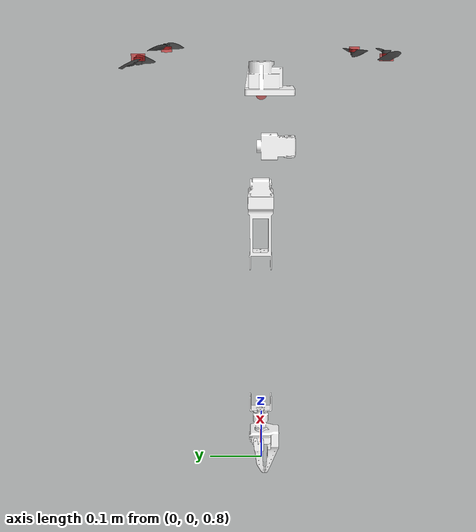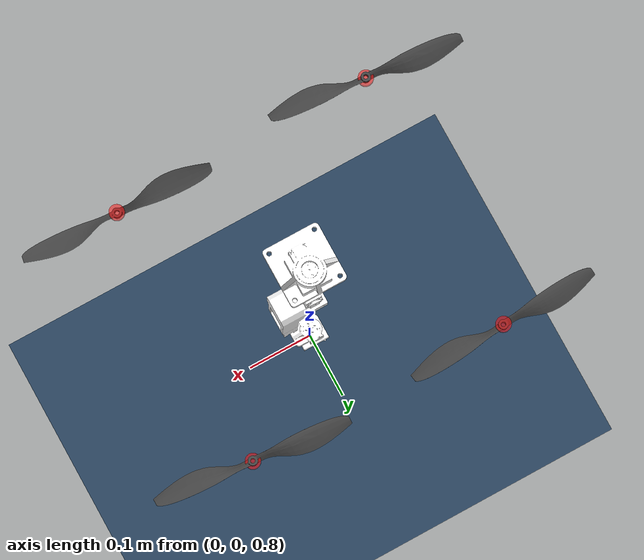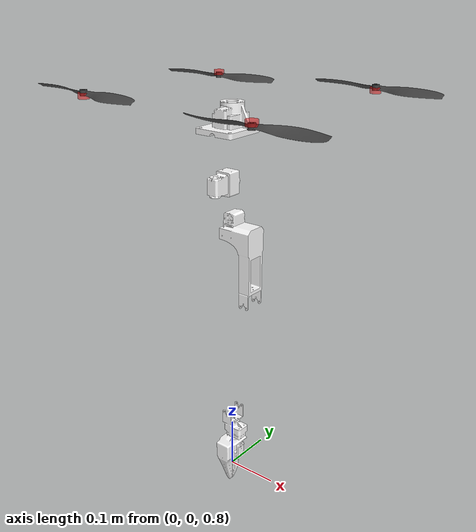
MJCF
<mujoco model="x500_arm">
    <compiler angle="radian" meshdir="meshes/" />
    <option timestep="0.005" integrator="implicit" density="1.225" viscosity="1.8e-5"/>
    <size njmax="500" nconmax="100" />
    <asset>
        <texture name="grid" type="2d" builtin="checker" width="512" height="512" rgb1=".1 .2 .3" rgb2=".2 .3 .4"/>
        <material name="grid" texture="grid" texrepeat="1 1" texuniform="true" reflectance="0.2" specular="1.0" shininess="0.5"/>
        <mesh name="base_link" file="base_link.STL" />
        <mesh name="rotor_1" file="rotor_1.STL" />
        <mesh name="rotor_2" file="rotor_2.STL" />
        <mesh name="rotor_3" file="rotor_3.STL" />
        <mesh name="rotor_4" file="rotor_4.STL" />
        <mesh name="link_1" file="link_1.STL" />
        <mesh name="link_2" file="link_2.STL" />
        <mesh name="link_3" file="link_3.STL" />
        <mesh name="link_4" file="link_4.STL" />
        <mesh name="link_5" file="link_5.STL" />
    </asset>
    <worldbody>
        <geom name="floor" type="plane" pos="0 0 0" size="0 0 0.1" contype="1" conaffinity="1" material="grid"/>
        <light directional="true" diffuse=".8 .8 .8" specular=".5 .5 .5" pos="0 0 5" dir="0 0 -1" castshadow="true"/>
        <body name="base_link" pos="0 0 1.5">
            <inertial pos="0.012066 0.0004345 -0.036721" quat="0.00677032 0.711218 -0.00646399 0.702909" mass="0.7359" diaginertia="0.0168756 0.0131902 0.0127303" />
            <joint name="floating_base_joint" type="free" />
            <geom type="mesh" contype="1" conaffinity="1" group="1" rgba="1 1 1 1" mesh="base_link" />
            <site name="base_link_origin" type="sphere" size="0.01" rgba="1 0 0 0.5" pos="0 0 0"/>
            <camera name="front_camera" pos="0.136 0 -0.0347" quat="0.5 0.5 -0.5 -0.5" />
            <camera name="top_camera" mode="trackcom" pos="0 0 2" />
            <body name="rotor_1" pos="0.17688 -0.17688 0.066">
                <inertial pos="0 0 -0.0062143" quat="0.0103827 0.707031 -0.0103827 0.707031" mass="0.012" diaginertia="5.789e-05 5.76494e-05 4.10648e-07" />
                <joint name="rotor_joint_1" pos="0 0 0" axis="0 0 1" />
                <geom type="mesh" contype="1" conaffinity="1" group="1" rgba="0.25098 0.25098 0.25098 1" mesh="rotor_1" />
                <site name="rotor_joint_thrust1" type="cylinder" size="0.01 0.005" pos="0 0 0" rgba="1 0 0 0.5"/>
            </body>
            <body name="rotor_2" pos="0.17688 0.17688 0.066">
                <inertial pos="0 0 -0.0062122" quat="-0.0104388 0.70703 0.0104388 0.70703" mass="0.012" diaginertia="5.793e-05 5.76799e-05 4.10086e-07" />
                <joint name="rotor_joint_2" pos="0 0 0" axis="0 0 1" />
                <geom type="mesh" contype="1" conaffinity="1" group="1" rgba="0.25098 0.25098 0.25098 1" mesh="rotor_2" />
                <site name="rotor_joint_thrust2" type="cylinder" size="0.01 0.005" pos="0 0 0" rgba="1 0 0 0.5"/>
            </body>
            <body name="rotor_3" pos="-0.17688 0.17688 0.066">
                <inertial pos="0 0 -0.0037857" quat="-0.0103827 0.707031 0.0103827 0.707031" mass="0.012" diaginertia="5.789e-05 5.76494e-05 4.10648e-07" />
                <joint name="rotor_joint_3" pos="0 0 0" axis="0 0 1" />
                <geom type="mesh" contype="1" conaffinity="1" group="1" rgba="0.25098 0.25098 0.25098 1" mesh="rotor_3" />
                <site name="rotor_joint_thrust3" type="cylinder" size="0.01 0.005" pos="0 0 0" rgba="1 0 0 0.5"/>
            </body>
            <body name="rotor_4" pos="-0.17688 -0.17688 0.066">
                <inertial pos="0 0 -0.0037878" quat="0.0104388 0.70703 -0.0104388 0.70703" mass="0.012" diaginertia="5.793e-05 5.76799e-05 4.10086e-07" />
                <joint name="rotor_joint_4" pos="0 0 0" axis="0 0 1" />
                <geom type="mesh" contype="1" conaffinity="1" group="1" rgba="0.25098 0.25098 0.25098 1" mesh="rotor_4" />
                <site name="rotor_joint_thrust4" type="cylinder" size="0.01 0.005" pos="0 0 0" rgba="1 0 0 0.5"/>
            </body>
            <body name="link_1" pos="0 0.0005 -0.088625" quat="0.707105 0.707108 0 0">
                <inertial pos="0.023682 -0.16131 -0.00087342" quat="0.474639 0.574751 -0.416929 0.520143" mass="0.1468" diaginertia="0.00104483 0.00103987 4.76741e-05" />
                <joint name="joint_1" pos="0 0 0" axis="0 0 1" limited="true" range="-2.6485 2.6485" damping="0.62275" frictionloss="0.098067" />
                <geom type="mesh" contype="1" conaffinity="1" group="1" rgba="1 1 1 1" mesh="link_1" />
                <body name="link_2" pos="0.04098 -0.2314 -0.0005">
                    <inertial pos="-0.037783 -0.16226 -0.00087726" quat="0.704478 0.709118 -0.0273526 -0.0107146" mass="0.1467" diaginertia="0.0014554 0.00144957 3.72723e-05" />
                    <joint name="joint_2" pos="0 0 0" axis="0 0 1" limited="true" range="0 3.4907" damping="0.72763" frictionloss="0.068647" />
                    <geom type="mesh" contype="1" conaffinity="1" group="1" rgba="1 1 1 1" mesh="link_2" />
                    <body name="link_3" pos="-0.04098 -0.24861 -0.0005">
                        <inertial pos="0.0040244 -0.039487 -4.87e-06" quat="0.70391 0.70391 0.0671633 0.0671633" mass="0.0618" diaginertia="2.68849e-05 2.514e-05 1.30451e-05" />
                        <joint name="joint_3" pos="0 0 0" axis="0 0 1" limited="true" range="-2.6485 2.6485" damping="0.72763" frictionloss="0.068647" />
                        <geom type="mesh" contype="1" conaffinity="1" group="1" rgba="1 1 1 1" mesh="link_3" />
                        <camera name="wrist_camera" pos="-0.2 0 0" quat="0.653 -0.271 -0.653 -0.271" />
                        <body name="link_4" pos="0 -0.0639 0" quat="0.499998 0.5 -0.5 0.500002">
                            <inertial pos="0.012935 0.00072181 0.028883" quat="0.718596 0.117058 0.11021 0.676588" mass="0.022338" diaginertia="1.44602e-05 1.2297e-05 5.6728e-06" />
                            <joint name="joint_4" pos="0 0 0" axis="0 0 1" limited="true" range="-3.1416 3.1416" damping="0.13298" frictionloss="0.027851" />
                            <geom type="mesh" contype="1" conaffinity="1" group="1" rgba="1 1 1 1" mesh="link_4" />
                            <body name="link_5" pos="-0.0044 0 0.02243" quat="0.707105 -0.707108 0 0">
                                <inertial pos="0.0015718 -0.0322801 -0.00038534" quat="0.718322 0.694561 0.0222174 0.0332439" mass="0.00926" diaginertia="4.4213e-06 3.8733e-06 9.55405e-07" />
                                <joint name="joint_5" pos="0 0 0" axis="0 0 1" limited="true" range="0 1.7628" damping="0.13298" frictionloss="0.027851" />
                                <geom type="mesh" contype="1" conaffinity="1" group="1" rgba="1 1 1 1" mesh="link_5" />
                            </body>
                        </body>
                    </body>
                </body>
            </body>
        </body>
    </worldbody>
    <actuator>
        <motor name="rotor_joint_1" joint="rotor_joint_1" />
        <motor name="rotor_joint_2" joint="rotor_joint_2" />
        <motor name="rotor_joint_3" joint="rotor_joint_3" />
        <motor name="rotor_joint_4" joint="rotor_joint_4" />
        <motor name="rotor_joint_thrust1" site="rotor_joint_thrust1" gear="0 0 1 0 0 -0.016" />
        <motor name="rotor_joint_thrust2" site="rotor_joint_thrust2" gear="0 0 1 0 0 0.016" />
        <motor name="rotor_joint_thrust3" site="rotor_joint_thrust3" gear="0 0 1 0 0 -0.016" />
        <motor name="rotor_joint_thrust4" site="rotor_joint_thrust4" gear="0 0 1 0 0 0.016" />
        <position name="joint_1" joint="joint_1" kp="50" dampratio="1" />
        <position name="joint_2" joint="joint_2" kp="50" dampratio="1" />
        <position name="joint_3" joint="joint_3" kp="50" dampratio="1" />
        <position name="joint_4" joint="joint_4" kp="1" dampratio="1" />
        <position name="joint_5" joint="joint_5" kp="1" dampratio="1" />
    </actuator>
    <sensor>
        <framepos name="framepos" objtype="site" objname="base_link_origin" />
        <framequat name="framequat" objtype="site" objname="base_link_origin" />
        <velocimeter name="velocimeter" site="base_link_origin" />
        <gyro name="gyro" site="base_link_origin" />
    </sensor>
</mujoco>
